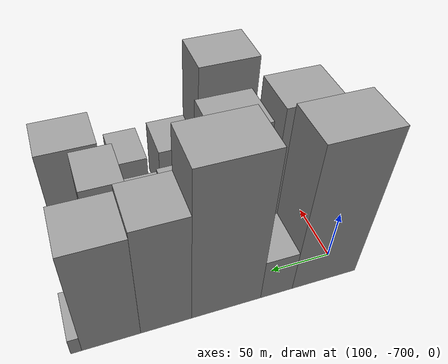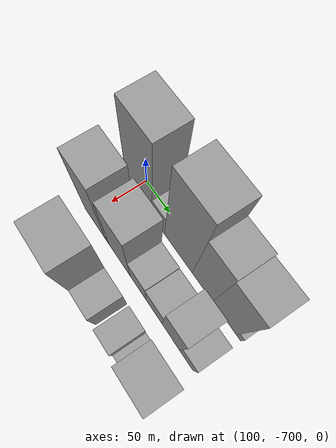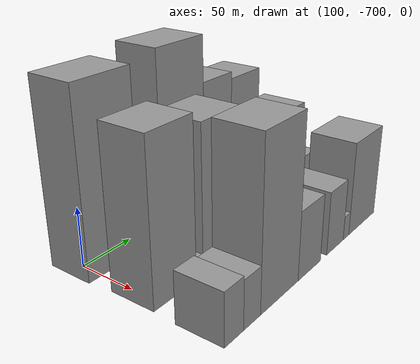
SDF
<sdf version="1.6">
 <world name="default">
  <model name="building_6">
   <static>1</static>
   <pose>100.0000 -685.4064 0 0.000000 0.000000 0.000000</pose>
   <link name="link">
    <pose>0 0 75.00 0 0 0</pose>
    <collision name="collision"><geometry><box><size>40.0000 54.6061 150.0000</size></box></geometry></collision>
    <visual name="visual">
     <cast_shadows>0</cast_shadows>
     <geometry><box><size>40.0000 54.6061 150.0000</size></box></geometry>
     <material>
      <script>
       <uri>model://grey_wall/materials/scripts</uri>
       <uri>model://grey_wall/materials/textures</uri>
       <name>vrc/grey_wall</name>
      </script>
     </material>
    </visual>
   </link>
  </model>
  <model name="building_7">
   <static>1</static>
   <pose>100.0000 -644.9098 0 0.000000 0.000000 0.000000</pose>
   <link name="link">
    <pose>0 0 22.50 0 0 0</pose>
    <collision name="collision"><geometry><box><size>40.0000 26.3871 45.0000</size></box></geometry></collision>
    <visual name="visual">
     <cast_shadows>0</cast_shadows>
     <geometry><box><size>40.0000 26.3871 45.0000</size></box></geometry>
     <material>
      <script>
       <uri>model://grey_wall/materials/scripts</uri>
       <uri>model://grey_wall/materials/textures</uri>
       <name>vrc/grey_wall</name>
      </script>
     </material>
    </visual>
   </link>
  </model>
  <model name="building_8">
   <static>1</static>
   <pose>100.0000 -604.1394 0 0.000000 0.000000 0.000000</pose>
   <link name="link">
    <pose>0 0 78.00 0 0 0</pose>
    <collision name="collision"><geometry><box><size>40.0000 55.1538 156.0000</size></box></geometry></collision>
    <visual name="visual">
     <cast_shadows>0</cast_shadows>
     <geometry><box><size>40.0000 55.1538 156.0000</size></box></geometry>
     <material>
      <script>
       <uri>model://grey_wall/materials/scripts</uri>
       <uri>model://grey_wall/materials/textures</uri>
       <name>vrc/grey_wall</name>
      </script>
     </material>
    </visual>
   </link>
  </model>
  <model name="building_9">
   <static>1</static>
   <pose>100.0000 -557.1358 0 0.000000 0.000000 0.000000</pose>
   <link name="link">
    <pose>0 0 58.50 0 0 0</pose>
    <collision name="collision"><geometry><box><size>40.0000 38.8533 117.0000</size></box></geometry></collision>
    <visual name="visual">
     <cast_shadows>0</cast_shadows>
     <geometry><box><size>40.0000 38.8533 117.0000</size></box></geometry>
     <material>
      <script>
       <uri>model://grey_wall/materials/scripts</uri>
       <uri>model://grey_wall/materials/textures</uri>
       <name>vrc/grey_wall</name>
      </script>
     </material>
    </visual>
   </link>
  </model>
  <model name="building_10">
   <static>1</static>
   <pose>100.0000 -516.2631 0 0.000000 0.000000 0.000000</pose>
   <link name="link">
    <pose>0 0 55.50 0 0 0</pose>
    <collision name="collision"><geometry><box><size>40.0000 42.8921 111.0000</size></box></geometry></collision>
    <visual name="visual">
     <cast_shadows>0</cast_shadows>
     <geometry><box><size>40.0000 42.8921 111.0000</size></box></geometry>
     <material>
      <script>
       <uri>model://grey_wall/materials/scripts</uri>
       <uri>model://grey_wall/materials/textures</uri>
       <name>vrc/grey_wall</name>
      </script>
     </material>
    </visual>
   </link>
  </model>
  <model name="building_11">
   <static>1</static>
   <pose>100.0000 -490.8703 0 0.000000 0.000000 0.000000</pose>
   <link name="link">
    <pose>0 0 9.00 0 0 0</pose>
    <collision name="collision"><geometry><box><size>40.0000 7.8936 18.0000</size></box></geometry></collision>
    <visual name="visual">
     <cast_shadows>0</cast_shadows>
     <geometry><box><size>40.0000 7.8936 18.0000</size></box></geometry>
     <material>
      <script>
       <uri>model://grey_wall/materials/scripts</uri>
       <uri>model://grey_wall/materials/textures</uri>
       <name>vrc/grey_wall</name>
      </script>
     </material>
    </visual>
   </link>
  </model>
  <model name="building_59">
   <static>1</static>
   <pose>160.0000 -687.0937 0 0.000000 0.000000 0.000000</pose>
   <link name="link">
    <pose>0 0 64.50 0 0 0</pose>
    <collision name="collision"><geometry><box><size>40.0000 45.8484 129.0000</size></box></geometry></collision>
    <visual name="visual">
     <cast_shadows>0</cast_shadows>
     <geometry><box><size>40.0000 45.8484 129.0000</size></box></geometry>
     <material>
      <script>
       <uri>model://grey_wall/materials/scripts</uri>
       <uri>model://grey_wall/materials/textures</uri>
       <name>vrc/grey_wall</name>
      </script>
     </material>
    </visual>
   </link>
  </model>
  <model name="building_60">
   <static>1</static>
   <pose>160.0000 -660.0778 0 0.000000 0.000000 0.000000</pose>
   <link name="link">
    <pose>0 0 9.00 0 0 0</pose>
    <collision name="collision"><geometry><box><size>40.0000 8.1835 18.0000</size></box></geometry></collision>
    <visual name="visual">
     <cast_shadows>0</cast_shadows>
     <geometry><box><size>40.0000 8.1835 18.0000</size></box></geometry>
     <material>
      <script>
       <uri>model://grey_wall/materials/scripts</uri>
       <uri>model://grey_wall/materials/textures</uri>
       <name>vrc/grey_wall</name>
      </script>
     </material>
    </visual>
   </link>
  </model>
  <model name="building_61">
   <static>1</static>
   <pose>160.0000 -633.7092 0 0.000000 0.000000 0.000000</pose>
   <link name="link">
    <pose>0 0 60.00 0 0 0</pose>
    <collision name="collision"><geometry><box><size>40.0000 44.5536 120.0000</size></box></geometry></collision>
    <visual name="visual">
     <cast_shadows>0</cast_shadows>
     <geometry><box><size>40.0000 44.5536 120.0000</size></box></geometry>
     <material>
      <script>
       <uri>model://grey_wall/materials/scripts</uri>
       <uri>model://grey_wall/materials/textures</uri>
       <name>vrc/grey_wall</name>
      </script>
     </material>
    </visual>
   </link>
  </model>
  <model name="building_62">
   <static>1</static>
   <pose>160.0000 -595.7839 0 0.000000 0.000000 0.000000</pose>
   <link name="link">
    <pose>0 0 30.00 0 0 0</pose>
    <collision name="collision"><geometry><box><size>40.0000 31.2971 60.0000</size></box></geometry></collision>
    <visual name="visual">
     <cast_shadows>0</cast_shadows>
     <geometry><box><size>40.0000 31.2971 60.0000</size></box></geometry>
     <material>
      <script>
       <uri>model://grey_wall/materials/scripts</uri>
       <uri>model://grey_wall/materials/textures</uri>
       <name>vrc/grey_wall</name>
      </script>
     </material>
    </visual>
   </link>
  </model>
  <model name="building_63">
   <static>1</static>
   <pose>160.0000 -564.2782 0 0.000000 0.000000 0.000000</pose>
   <link name="link">
    <pose>0 0 28.50 0 0 0</pose>
    <collision name="collision"><geometry><box><size>40.0000 31.7144 57.0000</size></box></geometry></collision>
    <visual name="visual">
     <cast_shadows>0</cast_shadows>
     <geometry><box><size>40.0000 31.7144 57.0000</size></box></geometry>
     <material>
      <script>
       <uri>model://grey_wall/materials/scripts</uri>
       <uri>model://grey_wall/materials/textures</uri>
       <name>vrc/grey_wall</name>
      </script>
     </material>
    </visual>
   </link>
  </model>
  <model name="building_64">
   <static>1</static>
   <pose>160.0000 -532.4082 0 0.000000 0.000000 0.000000</pose>
   <link name="link">
    <pose>0 0 48.00 0 0 0</pose>
    <collision name="collision"><geometry><box><size>40.0000 32.0256 96.0000</size></box></geometry></collision>
    <visual name="visual">
     <cast_shadows>0</cast_shadows>
     <geometry><box><size>40.0000 32.0256 96.0000</size></box></geometry>
     <material>
      <script>
       <uri>model://grey_wall/materials/scripts</uri>
       <uri>model://grey_wall/materials/textures</uri>
       <name>vrc/grey_wall</name>
      </script>
     </material>
    </visual>
   </link>
  </model>
  <model name="building_65">
   <static>1</static>
   <pose>160.0000 -503.7278 0 0.000000 0.000000 0.000000</pose>
   <link name="link">
    <pose>0 0 22.50 0 0 0</pose>
    <collision name="collision"><geometry><box><size>40.0000 25.3352 45.0000</size></box></geometry></collision>
    <visual name="visual">
     <cast_shadows>0</cast_shadows>
     <geometry><box><size>40.0000 25.3352 45.0000</size></box></geometry>
     <material>
      <script>
       <uri>model://grey_wall/materials/scripts</uri>
       <uri>model://grey_wall/materials/textures</uri>
       <name>vrc/grey_wall</name>
      </script>
     </material>
    </visual>
   </link>
  </model>
  <model name="building_113">
   <static>1</static>
   <pose>220.0000 -701.0187 0 0.000000 0.000000 0.000000</pose>
   <link name="link">
    <pose>0 0 21.00 0 0 0</pose>
    <collision name="collision"><geometry><box><size>40.0000 21.0188 42.0000</size></box></geometry></collision>
    <visual name="visual">
     <cast_shadows>0</cast_shadows>
     <geometry><box><size>40.0000 21.0188 42.0000</size></box></geometry>
     <material>
      <script>
       <uri>model://grey_wall/materials/scripts</uri>
       <uri>model://grey_wall/materials/textures</uri>
       <name>vrc/grey_wall</name>
      </script>
     </material>
    </visual>
   </link>
  </model>
  <model name="building_114">
   <static>1</static>
   <pose>220.0000 -680.6254 0 0.000000 0.000000 0.000000</pose>
   <link name="link">
    <pose>0 0 19.50 0 0 0</pose>
    <collision name="collision"><geometry><box><size>40.0000 19.7678 39.0000</size></box></geometry></collision>
    <visual name="visual">
     <cast_shadows>0</cast_shadows>
     <geometry><box><size>40.0000 19.7678 39.0000</size></box></geometry>
     <material>
      <script>
       <uri>model://grey_wall/materials/scripts</uri>
       <uri>model://grey_wall/materials/textures</uri>
       <name>vrc/grey_wall</name>
      </script>
     </material>
    </visual>
   </link>
  </model>
  <model name="building_115">
   <static>1</static>
   <pose>220.0000 -646.0178 0 0.000000 0.000000 0.000000</pose>
   <link name="link">
    <pose>0 0 66.00 0 0 0</pose>
    <collision name="collision"><geometry><box><size>40.0000 49.4474 132.0000</size></box></geometry></collision>
    <visual name="visual">
     <cast_shadows>0</cast_shadows>
     <geometry><box><size>40.0000 49.4474 132.0000</size></box></geometry>
     <material>
      <script>
       <uri>model://grey_wall/materials/scripts</uri>
       <uri>model://grey_wall/materials/textures</uri>
       <name>vrc/grey_wall</name>
      </script>
     </material>
    </visual>
   </link>
  </model>
  <model name="building_116">
   <static>1</static>
   <pose>220.0000 -604.4667 0 0.000000 0.000000 0.000000</pose>
   <link name="link">
    <pose>0 0 28.50 0 0 0</pose>
    <collision name="collision"><geometry><box><size>40.0000 33.6547 57.0000</size></box></geometry></collision>
    <visual name="visual">
     <cast_shadows>0</cast_shadows>
     <geometry><box><size>40.0000 33.6547 57.0000</size></box></geometry>
     <material>
      <script>
       <uri>model://grey_wall/materials/scripts</uri>
       <uri>model://grey_wall/materials/textures</uri>
       <name>vrc/grey_wall</name>
      </script>
     </material>
    </visual>
   </link>
  </model>
  <model name="building_117">
   <static>1</static>
   <pose>220.0000 -563.5869 0 0.000000 0.000000 0.000000</pose>
   <link name="link">
    <pose>0 0 27.00 0 0 0</pose>
    <collision name="collision"><geometry><box><size>40.0000 28.1050 54.0000</size></box></geometry></collision>
    <visual name="visual">
     <cast_shadows>0</cast_shadows>
     <geometry><box><size>40.0000 28.1050 54.0000</size></box></geometry>
     <material>
      <script>
       <uri>model://grey_wall/materials/scripts</uri>
       <uri>model://grey_wall/materials/textures</uri>
       <name>vrc/grey_wall</name>
      </script>
     </material>
    </visual>
   </link>
  </model>
  <model name="building_118">
   <static>1</static>
   <pose>220.0000 -544.5752 0 0.000000 0.000000 0.000000</pose>
   <link name="link">
    <pose>0 0 10.50 0 0 0</pose>
    <collision name="collision"><geometry><box><size>40.0000 9.9184 21.0000</size></box></geometry></collision>
    <visual name="visual">
     <cast_shadows>0</cast_shadows>
     <geometry><box><size>40.0000 9.9184 21.0000</size></box></geometry>
     <material>
      <script>
       <uri>model://grey_wall/materials/scripts</uri>
       <uri>model://grey_wall/materials/textures</uri>
       <name>vrc/grey_wall</name>
      </script>
     </material>
    </visual>
   </link>
  </model>
  <model name="building_119">
   <static>1</static>
   <pose>220.0000 -515.4357 0 0.000000 0.000000 0.000000</pose>
   <link name="link">
    <pose>0 0 40.50 0 0 0</pose>
    <collision name="collision"><geometry><box><size>40.0000 48.3606 81.0000</size></box></geometry></collision>
    <visual name="visual">
     <cast_shadows>0</cast_shadows>
     <geometry><box><size>40.0000 48.3606 81.0000</size></box></geometry>
     <material>
      <script>
       <uri>model://grey_wall/materials/scripts</uri>
       <uri>model://grey_wall/materials/textures</uri>
       <name>vrc/grey_wall</name>
      </script>
     </material>
    </visual>
   </link>
  </model>
 </world>
</sdf>
